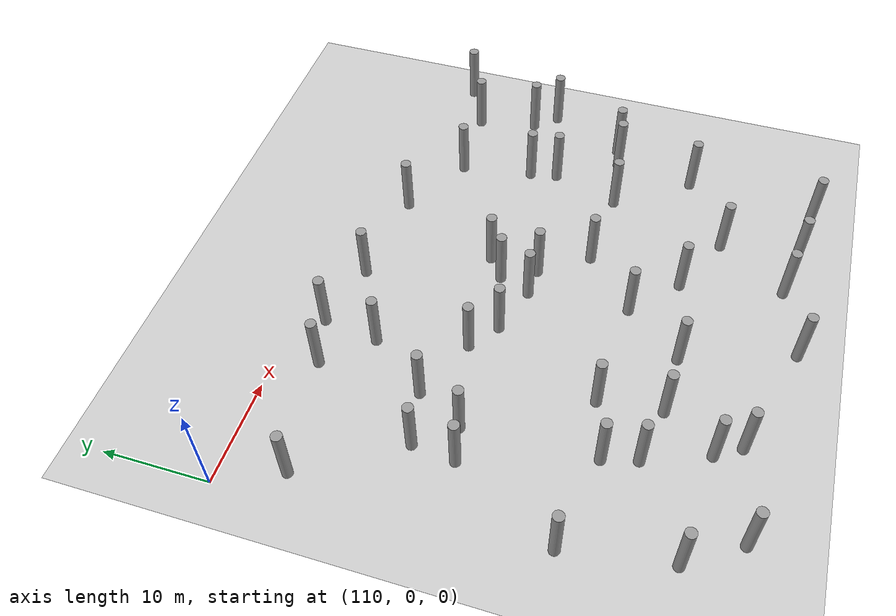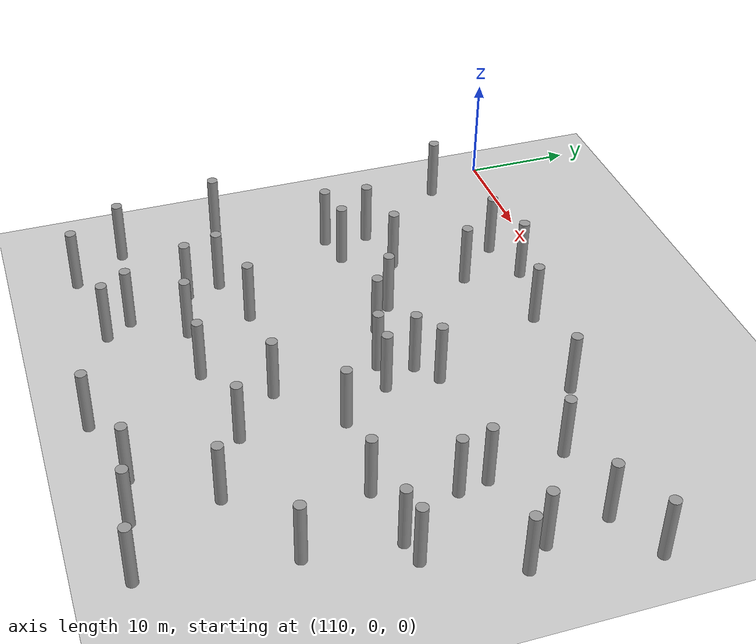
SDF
<sdf version="1.5">
 <world name="circle">
  <model name="ground">
   <static>1</static>
   <link name="link">
    <collision name="collision">
     <geometry><plane><normal>0 0 1</normal><size>100 100</size></plane></geometry>
     <surface><friction><ode><mu>100</mu><mu2>50</mu2></ode></friction></surface>
    </collision>
    <visual name="visual">
     <cast_shadows>0</cast_shadows>
     <geometry><plane><normal>0 0 1</normal><size>100 100</size></plane></geometry>
     <material>
      <script><uri>file://media/materials/scripts/gazebo.material</uri><name>Gazebo/Grey</name></script>
     </material>
    </visual>
    <velocity_decay><linear>0</linear><angular>0</angular></velocity_decay>
   </link>
  </model>
  <model name="unit_cylinder_180">
   <pose>117.227349672 -43.1780767599 3 3e-06 4e-06 -0</pose>
   <static>1</static>
   <self_collide>1</self_collide>
   <link name="link">
    <inertial>
     <mass>1</mass>
     <inertia><ixx>0.145833</ixx><ixy>0</ixy><ixz>0</ixz><iyy>0.145833</iyy><iyz>0</iyz><izz>0.125</izz></inertia>
    </inertial>
    <collision name="collision">
     <geometry><cylinder><radius>0.5</radius><length>6</length></cylinder></geometry>
    </collision>
    <visual name="visual">
     <geometry><cylinder><radius>0.5</radius><length>6</length></cylinder></geometry>
     <material>
      <script><name>Gazebo/Grey</name><uri>file://media/materials/scripts/gazebo.material</uri></script>
     </material>
    </visual>
    <collision name="cyl_collision">
     <geometry><cylinder><radius>0.5</radius><length>6</length></cylinder></geometry>
    </collision>
    <sensor name="my_contact" type="contact">
     <contact><collision>cyl_collision</collision></contact>
     <update_rate>5</update_rate>
    </sensor>
   </link>
  </model>
  <model name="unit_cylinder_181">
   <pose>114.049163277 -38.3303266834 3 3e-06 4e-06 -0</pose>
   <static>1</static>
   <self_collide>1</self_collide>
   <link name="link">
    <inertial>
     <mass>1</mass>
     <inertia><ixx>0.145833</ixx><ixy>0</ixy><ixz>0</ixz><iyy>0.145833</iyy><iyz>0</iyz><izz>0.125</izz></inertia>
    </inertial>
    <collision name="collision">
     <geometry><cylinder><radius>0.5</radius><length>6</length></cylinder></geometry>
    </collision>
    <visual name="visual">
     <geometry><cylinder><radius>0.5</radius><length>6</length></cylinder></geometry>
     <material>
      <script><name>Gazebo/Grey</name><uri>file://media/materials/scripts/gazebo.material</uri></script>
     </material>
    </visual>
    <collision name="cyl_collision">
     <geometry><cylinder><radius>0.5</radius><length>6</length></cylinder></geometry>
    </collision>
    <sensor name="my_contact" type="contact">
     <contact><collision>cyl_collision</collision></contact>
     <update_rate>5</update_rate>
    </sensor>
   </link>
  </model>
  <model name="unit_cylinder_182">
   <pose>112.530425432 -28.7020514311 3 3e-06 4e-06 -0</pose>
   <static>1</static>
   <self_collide>1</self_collide>
   <link name="link">
    <inertial>
     <mass>1</mass>
     <inertia><ixx>0.145833</ixx><ixy>0</ixy><ixz>0</ixz><iyy>0.145833</iyy><iyz>0</iyz><izz>0.125</izz></inertia>
    </inertial>
    <collision name="collision">
     <geometry><cylinder><radius>0.5</radius><length>6</length></cylinder></geometry>
    </collision>
    <visual name="visual">
     <geometry><cylinder><radius>0.5</radius><length>6</length></cylinder></geometry>
     <material>
      <script><name>Gazebo/Grey</name><uri>file://media/materials/scripts/gazebo.material</uri></script>
     </material>
    </visual>
    <collision name="cyl_collision">
     <geometry><cylinder><radius>0.5</radius><length>6</length></cylinder></geometry>
    </collision>
    <sensor name="my_contact" type="contact">
     <contact><collision>cyl_collision</collision></contact>
     <update_rate>5</update_rate>
    </sensor>
   </link>
  </model>
  <model name="unit_cylinder_183">
   <pose>117.67870654 -18.8550168475 3 3e-06 4e-06 -0</pose>
   <static>1</static>
   <self_collide>1</self_collide>
   <link name="link">
    <inertial>
     <mass>1</mass>
     <inertia><ixx>0.145833</ixx><ixy>0</ixy><ixz>0</ixz><iyy>0.145833</iyy><iyz>0</iyz><izz>0.125</izz></inertia>
    </inertial>
    <collision name="collision">
     <geometry><cylinder><radius>0.5</radius><length>6</length></cylinder></geometry>
    </collision>
    <visual name="visual">
     <geometry><cylinder><radius>0.5</radius><length>6</length></cylinder></geometry>
     <material>
      <script><name>Gazebo/Grey</name><uri>file://media/materials/scripts/gazebo.material</uri></script>
     </material>
    </visual>
    <collision name="cyl_collision">
     <geometry><cylinder><radius>0.5</radius><length>6</length></cylinder></geometry>
    </collision>
    <sensor name="my_contact" type="contact">
     <contact><collision>cyl_collision</collision></contact>
     <update_rate>5</update_rate>
    </sensor>
   </link>
  </model>
  <model name="unit_cylinder_184">
   <pose>118.140225729 -14.8021206017 3 3e-06 4e-06 -0</pose>
   <static>1</static>
   <self_collide>1</self_collide>
   <link name="link">
    <inertial>
     <mass>1</mass>
     <inertia><ixx>0.145833</ixx><ixy>0</ixy><ixz>0</ixz><iyy>0.145833</iyy><iyz>0</iyz><izz>0.125</izz></inertia>
    </inertial>
    <collision name="collision">
     <geometry><cylinder><radius>0.5</radius><length>6</length></cylinder></geometry>
    </collision>
    <visual name="visual">
     <geometry><cylinder><radius>0.5</radius><length>6</length></cylinder></geometry>
     <material>
      <script><name>Gazebo/Grey</name><uri>file://media/materials/scripts/gazebo.material</uri></script>
     </material>
    </visual>
    <collision name="cyl_collision">
     <geometry><cylinder><radius>0.5</radius><length>6</length></cylinder></geometry>
    </collision>
    <sensor name="my_contact" type="contact">
     <contact><collision>cyl_collision</collision></contact>
     <update_rate>5</update_rate>
    </sensor>
   </link>
  </model>
  <model name="unit_cylinder_185">
   <pose>112.664201997 -5.79426701286 3 3e-06 4e-06 -0</pose>
   <static>1</static>
   <self_collide>1</self_collide>
   <link name="link">
    <inertial>
     <mass>1</mass>
     <inertia><ixx>0.145833</ixx><ixy>0</ixy><ixz>0</ixz><iyy>0.145833</iyy><iyz>0</iyz><izz>0.125</izz></inertia>
    </inertial>
    <collision name="collision">
     <geometry><cylinder><radius>0.5</radius><length>6</length></cylinder></geometry>
    </collision>
    <visual name="visual">
     <geometry><cylinder><radius>0.5</radius><length>6</length></cylinder></geometry>
     <material>
      <script><name>Gazebo/Grey</name><uri>file://media/materials/scripts/gazebo.material</uri></script>
     </material>
    </visual>
    <collision name="cyl_collision">
     <geometry><cylinder><radius>0.5</radius><length>6</length></cylinder></geometry>
    </collision>
    <sensor name="my_contact" type="contact">
     <contact><collision>cyl_collision</collision></contact>
     <update_rate>5</update_rate>
    </sensor>
   </link>
  </model>
  <model name="unit_cylinder_192">
   <pose>124.418113143 -39.4766305464 3 3e-06 4e-06 -0</pose>
   <static>1</static>
   <self_collide>1</self_collide>
   <link name="link">
    <inertial>
     <mass>1</mass>
     <inertia><ixx>0.145833</ixx><ixy>0</ixy><ixz>0</ixz><iyy>0.145833</iyy><iyz>0</iyz><izz>0.125</izz></inertia>
    </inertial>
    <collision name="collision">
     <geometry><cylinder><radius>0.5</radius><length>6</length></cylinder></geometry>
    </collision>
    <visual name="visual">
     <geometry><cylinder><radius>0.5</radius><length>6</length></cylinder></geometry>
     <material>
      <script><name>Gazebo/Grey</name><uri>file://media/materials/scripts/gazebo.material</uri></script>
     </material>
    </visual>
    <collision name="cyl_collision">
     <geometry><cylinder><radius>0.5</radius><length>6</length></cylinder></geometry>
    </collision>
    <sensor name="my_contact" type="contact">
     <contact><collision>cyl_collision</collision></contact>
     <update_rate>5</update_rate>
    </sensor>
   </link>
  </model>
  <model name="unit_cylinder_193">
   <pose>122.183097567 -33.6209248486 3 3e-06 4e-06 -0</pose>
   <static>1</static>
   <self_collide>1</self_collide>
   <link name="link">
    <inertial>
     <mass>1</mass>
     <inertia><ixx>0.145833</ixx><ixy>0</ixy><ixz>0</ixz><iyy>0.145833</iyy><iyz>0</iyz><izz>0.125</izz></inertia>
    </inertial>
    <collision name="collision">
     <geometry><cylinder><radius>0.5</radius><length>6</length></cylinder></geometry>
    </collision>
    <visual name="visual">
     <geometry><cylinder><radius>0.5</radius><length>6</length></cylinder></geometry>
     <material>
      <script><name>Gazebo/Grey</name><uri>file://media/materials/scripts/gazebo.material</uri></script>
     </material>
    </visual>
    <collision name="cyl_collision">
     <geometry><cylinder><radius>0.5</radius><length>6</length></cylinder></geometry>
    </collision>
    <sensor name="my_contact" type="contact">
     <contact><collision>cyl_collision</collision></contact>
     <update_rate>5</update_rate>
    </sensor>
   </link>
  </model>
  <model name="unit_cylinder_194">
   <pose>121.361148416 -30.4548703678 3 3e-06 4e-06 -0</pose>
   <static>1</static>
   <self_collide>1</self_collide>
   <link name="link">
    <inertial>
     <mass>1</mass>
     <inertia><ixx>0.145833</ixx><ixy>0</ixy><ixz>0</ixz><iyy>0.145833</iyy><iyz>0</iyz><izz>0.125</izz></inertia>
    </inertial>
    <collision name="collision">
     <geometry><cylinder><radius>0.5</radius><length>6</length></cylinder></geometry>
    </collision>
    <visual name="visual">
     <geometry><cylinder><radius>0.5</radius><length>6</length></cylinder></geometry>
     <material>
      <script><name>Gazebo/Grey</name><uri>file://media/materials/scripts/gazebo.material</uri></script>
     </material>
    </visual>
    <collision name="cyl_collision">
     <geometry><cylinder><radius>0.5</radius><length>6</length></cylinder></geometry>
    </collision>
    <sensor name="my_contact" type="contact">
     <contact><collision>cyl_collision</collision></contact>
     <update_rate>5</update_rate>
    </sensor>
   </link>
  </model>
  <model name="unit_cylinder_195">
   <pose>120.883897498 -18.1847972878 3 3e-06 4e-06 -0</pose>
   <static>1</static>
   <self_collide>1</self_collide>
   <link name="link">
    <inertial>
     <mass>1</mass>
     <inertia><ixx>0.145833</ixx><ixy>0</ixy><ixz>0</ixz><iyy>0.145833</iyy><iyz>0</iyz><izz>0.125</izz></inertia>
    </inertial>
    <collision name="collision">
     <geometry><cylinder><radius>0.5</radius><length>6</length></cylinder></geometry>
    </collision>
    <visual name="visual">
     <geometry><cylinder><radius>0.5</radius><length>6</length></cylinder></geometry>
     <material>
      <script><name>Gazebo/Grey</name><uri>file://media/materials/scripts/gazebo.material</uri></script>
     </material>
    </visual>
    <collision name="cyl_collision">
     <geometry><cylinder><radius>0.5</radius><length>6</length></cylinder></geometry>
    </collision>
    <sensor name="my_contact" type="contact">
     <contact><collision>cyl_collision</collision></contact>
     <update_rate>5</update_rate>
    </sensor>
   </link>
  </model>
  <model name="unit_cylinder_196">
   <pose>123.217998125 -13.7854951915 3 3e-06 4e-06 -0</pose>
   <static>1</static>
   <self_collide>1</self_collide>
   <link name="link">
    <inertial>
     <mass>1</mass>
     <inertia><ixx>0.145833</ixx><ixy>0</ixy><ixz>0</ixz><iyy>0.145833</iyy><iyz>0</iyz><izz>0.125</izz></inertia>
    </inertial>
    <collision name="collision">
     <geometry><cylinder><radius>0.5</radius><length>6</length></cylinder></geometry>
    </collision>
    <visual name="visual">
     <geometry><cylinder><radius>0.5</radius><length>6</length></cylinder></geometry>
     <material>
      <script><name>Gazebo/Grey</name><uri>file://media/materials/scripts/gazebo.material</uri></script>
     </material>
    </visual>
    <collision name="cyl_collision">
     <geometry><cylinder><radius>0.5</radius><length>6</length></cylinder></geometry>
    </collision>
    <sensor name="my_contact" type="contact">
     <contact><collision>cyl_collision</collision></contact>
     <update_rate>5</update_rate>
    </sensor>
   </link>
  </model>
  <model name="unit_cylinder_197">
   <pose>123.663674029 -3.95529049452 3 3e-06 4e-06 -0</pose>
   <static>1</static>
   <self_collide>1</self_collide>
   <link name="link">
    <inertial>
     <mass>1</mass>
     <inertia><ixx>0.145833</ixx><ixy>0</ixy><ixz>0</ixz><iyy>0.145833</iyy><iyz>0</iyz><izz>0.125</izz></inertia>
    </inertial>
    <collision name="collision">
     <geometry><cylinder><radius>0.5</radius><length>6</length></cylinder></geometry>
    </collision>
    <visual name="visual">
     <geometry><cylinder><radius>0.5</radius><length>6</length></cylinder></geometry>
     <material>
      <script><name>Gazebo/Grey</name><uri>file://media/materials/scripts/gazebo.material</uri></script>
     </material>
    </visual>
    <collision name="cyl_collision">
     <geometry><cylinder><radius>0.5</radius><length>6</length></cylinder></geometry>
    </collision>
    <sensor name="my_contact" type="contact">
     <contact><collision>cyl_collision</collision></contact>
     <update_rate>5</update_rate>
    </sensor>
   </link>
  </model>
  <model name="unit_cylinder_204">
   <pose>125.865000542 -41.8383521421 3 3e-06 4e-06 -0</pose>
   <static>1</static>
   <self_collide>1</self_collide>
   <link name="link">
    <inertial>
     <mass>1</mass>
     <inertia><ixx>0.145833</ixx><ixy>0</ixy><ixz>0</ixz><iyy>0.145833</iyy><iyz>0</iyz><izz>0.125</izz></inertia>
    </inertial>
    <collision name="collision">
     <geometry><cylinder><radius>0.5</radius><length>6</length></cylinder></geometry>
    </collision>
    <visual name="visual">
     <geometry><cylinder><radius>0.5</radius><length>6</length></cylinder></geometry>
     <material>
      <script><name>Gazebo/Grey</name><uri>file://media/materials/scripts/gazebo.material</uri></script>
     </material>
    </visual>
    <collision name="cyl_collision">
     <geometry><cylinder><radius>0.5</radius><length>6</length></cylinder></geometry>
    </collision>
    <sensor name="my_contact" type="contact">
     <contact><collision>cyl_collision</collision></contact>
     <update_rate>5</update_rate>
    </sensor>
   </link>
  </model>
  <model name="unit_cylinder_205">
   <pose>127.493491685 -34.7688129786 3 3e-06 4e-06 -0</pose>
   <static>1</static>
   <self_collide>1</self_collide>
   <link name="link">
    <inertial>
     <mass>1</mass>
     <inertia><ixx>0.145833</ixx><ixy>0</ixy><ixz>0</ixz><iyy>0.145833</iyy><iyz>0</iyz><izz>0.125</izz></inertia>
    </inertial>
    <collision name="collision">
     <geometry><cylinder><radius>0.5</radius><length>6</length></cylinder></geometry>
    </collision>
    <visual name="visual">
     <geometry><cylinder><radius>0.5</radius><length>6</length></cylinder></geometry>
     <material>
      <script><name>Gazebo/Grey</name><uri>file://media/materials/scripts/gazebo.material</uri></script>
     </material>
    </visual>
    <collision name="cyl_collision">
     <geometry><cylinder><radius>0.5</radius><length>6</length></cylinder></geometry>
    </collision>
    <sensor name="my_contact" type="contact">
     <contact><collision>cyl_collision</collision></contact>
     <update_rate>5</update_rate>
    </sensor>
   </link>
  </model>
  <model name="unit_cylinder_206">
   <pose>126.850417998 -28.8914959607 3 3e-06 4e-06 -0</pose>
   <static>1</static>
   <self_collide>1</self_collide>
   <link name="link">
    <inertial>
     <mass>1</mass>
     <inertia><ixx>0.145833</ixx><ixy>0</ixy><ixz>0</ixz><iyy>0.145833</iyy><iyz>0</iyz><izz>0.125</izz></inertia>
    </inertial>
    <collision name="collision">
     <geometry><cylinder><radius>0.5</radius><length>6</length></cylinder></geometry>
    </collision>
    <visual name="visual">
     <geometry><cylinder><radius>0.5</radius><length>6</length></cylinder></geometry>
     <material>
      <script><name>Gazebo/Grey</name><uri>file://media/materials/scripts/gazebo.material</uri></script>
     </material>
    </visual>
    <collision name="cyl_collision">
     <geometry><cylinder><radius>0.5</radius><length>6</length></cylinder></geometry>
    </collision>
    <sensor name="my_contact" type="contact">
     <contact><collision>cyl_collision</collision></contact>
     <update_rate>5</update_rate>
    </sensor>
   </link>
  </model>
  <model name="unit_cylinder_207">
   <pose>132.1364359 -18.4591327651 3 3e-06 4e-06 -0</pose>
   <static>1</static>
   <self_collide>1</self_collide>
   <link name="link">
    <inertial>
     <mass>1</mass>
     <inertia><ixx>0.145833</ixx><ixy>0</ixy><ixz>0</ixz><iyy>0.145833</iyy><iyz>0</iyz><izz>0.125</izz></inertia>
    </inertial>
    <collision name="collision">
     <geometry><cylinder><radius>0.5</radius><length>6</length></cylinder></geometry>
    </collision>
    <visual name="visual">
     <geometry><cylinder><radius>0.5</radius><length>6</length></cylinder></geometry>
     <material>
      <script><name>Gazebo/Grey</name><uri>file://media/materials/scripts/gazebo.material</uri></script>
     </material>
    </visual>
    <collision name="cyl_collision">
     <geometry><cylinder><radius>0.5</radius><length>6</length></cylinder></geometry>
    </collision>
    <sensor name="my_contact" type="contact">
     <contact><collision>cyl_collision</collision></contact>
     <update_rate>5</update_rate>
    </sensor>
   </link>
  </model>
  <model name="unit_cylinder_208">
   <pose>129.337318922 -16.4013337597 3 3e-06 4e-06 -0</pose>
   <static>1</static>
   <self_collide>1</self_collide>
   <link name="link">
    <inertial>
     <mass>1</mass>
     <inertia><ixx>0.145833</ixx><ixy>0</ixy><ixz>0</ixz><iyy>0.145833</iyy><iyz>0</iyz><izz>0.125</izz></inertia>
    </inertial>
    <collision name="collision">
     <geometry><cylinder><radius>0.5</radius><length>6</length></cylinder></geometry>
    </collision>
    <visual name="visual">
     <geometry><cylinder><radius>0.5</radius><length>6</length></cylinder></geometry>
     <material>
      <script><name>Gazebo/Grey</name><uri>file://media/materials/scripts/gazebo.material</uri></script>
     </material>
    </visual>
    <collision name="cyl_collision">
     <geometry><cylinder><radius>0.5</radius><length>6</length></cylinder></geometry>
    </collision>
    <sensor name="my_contact" type="contact">
     <contact><collision>cyl_collision</collision></contact>
     <update_rate>5</update_rate>
    </sensor>
   </link>
  </model>
  <model name="unit_cylinder_209">
   <pose>127.486648958 -8.07583441381 3 3e-06 4e-06 -0</pose>
   <static>1</static>
   <self_collide>1</self_collide>
   <link name="link">
    <inertial>
     <mass>1</mass>
     <inertia><ixx>0.145833</ixx><ixy>0</ixy><ixz>0</ixz><iyy>0.145833</iyy><iyz>0</iyz><izz>0.125</izz></inertia>
    </inertial>
    <collision name="collision">
     <geometry><cylinder><radius>0.5</radius><length>6</length></cylinder></geometry>
    </collision>
    <visual name="visual">
     <geometry><cylinder><radius>0.5</radius><length>6</length></cylinder></geometry>
     <material>
      <script><name>Gazebo/Grey</name><uri>file://media/materials/scripts/gazebo.material</uri></script>
     </material>
    </visual>
    <collision name="cyl_collision">
     <geometry><cylinder><radius>0.5</radius><length>6</length></cylinder></geometry>
    </collision>
    <sensor name="my_contact" type="contact">
     <contact><collision>cyl_collision</collision></contact>
     <update_rate>5</update_rate>
    </sensor>
   </link>
  </model>
  <model name="unit_cylinder_210">
   <pose>128.273730975 -2.70548357419 3 3e-06 4e-06 -0</pose>
   <static>1</static>
   <self_collide>1</self_collide>
   <link name="link">
    <inertial>
     <mass>1</mass>
     <inertia><ixx>0.145833</ixx><ixy>0</ixy><ixz>0</ixz><iyy>0.145833</iyy><iyz>0</iyz><izz>0.125</izz></inertia>
    </inertial>
    <collision name="collision">
     <geometry><cylinder><radius>0.5</radius><length>6</length></cylinder></geometry>
    </collision>
    <visual name="visual">
     <geometry><cylinder><radius>0.5</radius><length>6</length></cylinder></geometry>
     <material>
      <script><name>Gazebo/Grey</name><uri>file://media/materials/scripts/gazebo.material</uri></script>
     </material>
    </visual>
    <collision name="cyl_collision">
     <geometry><cylinder><radius>0.5</radius><length>6</length></cylinder></geometry>
    </collision>
    <sensor name="my_contact" type="contact">
     <contact><collision>cyl_collision</collision></contact>
     <update_rate>5</update_rate>
    </sensor>
   </link>
  </model>
  <model name="unit_cylinder_216">
   <pose>136.867746934 -45.3376663842 3 3e-06 4e-06 -0</pose>
   <static>1</static>
   <self_collide>1</self_collide>
   <link name="link">
    <inertial>
     <mass>1</mass>
     <inertia><ixx>0.145833</ixx><ixy>0</ixy><ixz>0</ixz><iyy>0.145833</iyy><iyz>0</iyz><izz>0.125</izz></inertia>
    </inertial>
    <collision name="collision">
     <geometry><cylinder><radius>0.5</radius><length>6</length></cylinder></geometry>
    </collision>
    <visual name="visual">
     <geometry><cylinder><radius>0.5</radius><length>6</length></cylinder></geometry>
     <material>
      <script><name>Gazebo/Grey</name><uri>file://media/materials/scripts/gazebo.material</uri></script>
     </material>
    </visual>
    <collision name="cyl_collision">
     <geometry><cylinder><radius>0.5</radius><length>6</length></cylinder></geometry>
    </collision>
    <sensor name="my_contact" type="contact">
     <contact><collision>cyl_collision</collision></contact>
     <update_rate>5</update_rate>
    </sensor>
   </link>
  </model>
  <model name="unit_cylinder_217">
   <pose>133.355371106 -34.9744945491 3 3e-06 4e-06 -0</pose>
   <static>1</static>
   <self_collide>1</self_collide>
   <link name="link">
    <inertial>
     <mass>1</mass>
     <inertia><ixx>0.145833</ixx><ixy>0</ixy><ixz>0</ixz><iyy>0.145833</iyy><iyz>0</iyz><izz>0.125</izz></inertia>
    </inertial>
    <collision name="collision">
     <geometry><cylinder><radius>0.5</radius><length>6</length></cylinder></geometry>
    </collision>
    <visual name="visual">
     <geometry><cylinder><radius>0.5</radius><length>6</length></cylinder></geometry>
     <material>
      <script><name>Gazebo/Grey</name><uri>file://media/materials/scripts/gazebo.material</uri></script>
     </material>
    </visual>
    <collision name="cyl_collision">
     <geometry><cylinder><radius>0.5</radius><length>6</length></cylinder></geometry>
    </collision>
    <sensor name="my_contact" type="contact">
     <contact><collision>cyl_collision</collision></contact>
     <update_rate>5</update_rate>
    </sensor>
   </link>
  </model>
  <model name="unit_cylinder_218">
   <pose>137.625552229 -29.6007255712 3 3e-06 4e-06 -0</pose>
   <static>1</static>
   <self_collide>1</self_collide>
   <link name="link">
    <inertial>
     <mass>1</mass>
     <inertia><ixx>0.145833</ixx><ixy>0</ixy><ixz>0</ixz><iyy>0.145833</iyy><iyz>0</iyz><izz>0.125</izz></inertia>
    </inertial>
    <collision name="collision">
     <geometry><cylinder><radius>0.5</radius><length>6</length></cylinder></geometry>
    </collision>
    <visual name="visual">
     <geometry><cylinder><radius>0.5</radius><length>6</length></cylinder></geometry>
     <material>
      <script><name>Gazebo/Grey</name><uri>file://media/materials/scripts/gazebo.material</uri></script>
     </material>
    </visual>
    <collision name="cyl_collision">
     <geometry><cylinder><radius>0.5</radius><length>6</length></cylinder></geometry>
    </collision>
    <sensor name="my_contact" type="contact">
     <contact><collision>cyl_collision</collision></contact>
     <update_rate>5</update_rate>
    </sensor>
   </link>
  </model>
  <model name="unit_cylinder_219">
   <pose>136.878477625 -19.9841074072 3 3e-06 4e-06 -0</pose>
   <static>1</static>
   <self_collide>1</self_collide>
   <link name="link">
    <inertial>
     <mass>1</mass>
     <inertia><ixx>0.145833</ixx><ixy>0</ixy><ixz>0</ixz><iyy>0.145833</iyy><iyz>0</iyz><izz>0.125</izz></inertia>
    </inertial>
    <collision name="collision">
     <geometry><cylinder><radius>0.5</radius><length>6</length></cylinder></geometry>
    </collision>
    <visual name="visual">
     <geometry><cylinder><radius>0.5</radius><length>6</length></cylinder></geometry>
     <material>
      <script><name>Gazebo/Grey</name><uri>file://media/materials/scripts/gazebo.material</uri></script>
     </material>
    </visual>
    <collision name="cyl_collision">
     <geometry><cylinder><radius>0.5</radius><length>6</length></cylinder></geometry>
    </collision>
    <sensor name="my_contact" type="contact">
     <contact><collision>cyl_collision</collision></contact>
     <update_rate>5</update_rate>
    </sensor>
   </link>
  </model>
  <model name="unit_cylinder_220">
   <pose>137.985148418 -16.9545515312 3 3e-06 4e-06 -0</pose>
   <static>1</static>
   <self_collide>1</self_collide>
   <link name="link">
    <inertial>
     <mass>1</mass>
     <inertia><ixx>0.145833</ixx><ixy>0</ixy><ixz>0</ixz><iyy>0.145833</iyy><iyz>0</iyz><izz>0.125</izz></inertia>
    </inertial>
    <collision name="collision">
     <geometry><cylinder><radius>0.5</radius><length>6</length></cylinder></geometry>
    </collision>
    <visual name="visual">
     <geometry><cylinder><radius>0.5</radius><length>6</length></cylinder></geometry>
     <material>
      <script><name>Gazebo/Grey</name><uri>file://media/materials/scripts/gazebo.material</uri></script>
     </material>
    </visual>
    <collision name="cyl_collision">
     <geometry><cylinder><radius>0.5</radius><length>6</length></cylinder></geometry>
    </collision>
    <sensor name="my_contact" type="contact">
     <contact><collision>cyl_collision</collision></contact>
     <update_rate>5</update_rate>
    </sensor>
   </link>
  </model>
  <model name="unit_cylinder_221">
   <pose>134.895268519 -4.19392041962 3 3e-06 4e-06 -0</pose>
   <static>1</static>
   <self_collide>1</self_collide>
   <link name="link">
    <inertial>
     <mass>1</mass>
     <inertia><ixx>0.145833</ixx><ixy>0</ixy><ixz>0</ixz><iyy>0.145833</iyy><iyz>0</iyz><izz>0.125</izz></inertia>
    </inertial>
    <collision name="collision">
     <geometry><cylinder><radius>0.5</radius><length>6</length></cylinder></geometry>
    </collision>
    <visual name="visual">
     <geometry><cylinder><radius>0.5</radius><length>6</length></cylinder></geometry>
     <material>
      <script><name>Gazebo/Grey</name><uri>file://media/materials/scripts/gazebo.material</uri></script>
     </material>
    </visual>
    <collision name="cyl_collision">
     <geometry><cylinder><radius>0.5</radius><length>6</length></cylinder></geometry>
    </collision>
    <sensor name="my_contact" type="contact">
     <contact><collision>cyl_collision</collision></contact>
     <update_rate>5</update_rate>
    </sensor>
   </link>
  </model>
  <model name="unit_cylinder_228">
   <pose>143.907242474 -43.3625671628 3 3e-06 4e-06 -0</pose>
   <static>1</static>
   <self_collide>1</self_collide>
   <link name="link">
    <inertial>
     <mass>1</mass>
     <inertia><ixx>0.145833</ixx><ixy>0</ixy><ixz>0</ixz><iyy>0.145833</iyy><iyz>0</iyz><izz>0.125</izz></inertia>
    </inertial>
    <collision name="collision">
     <geometry><cylinder><radius>0.5</radius><length>6</length></cylinder></geometry>
    </collision>
    <visual name="visual">
     <geometry><cylinder><radius>0.5</radius><length>6</length></cylinder></geometry>
     <material>
      <script><name>Gazebo/Grey</name><uri>file://media/materials/scripts/gazebo.material</uri></script>
     </material>
    </visual>
    <collision name="cyl_collision">
     <geometry><cylinder><radius>0.5</radius><length>6</length></cylinder></geometry>
    </collision>
    <sensor name="my_contact" type="contact">
     <contact><collision>cyl_collision</collision></contact>
     <update_rate>5</update_rate>
    </sensor>
   </link>
  </model>
  <model name="unit_cylinder_229">
   <pose>142.020433223 -33.7151473519 3 3e-06 4e-06 -0</pose>
   <static>1</static>
   <self_collide>1</self_collide>
   <link name="link">
    <inertial>
     <mass>1</mass>
     <inertia><ixx>0.145833</ixx><ixy>0</ixy><ixz>0</ixz><iyy>0.145833</iyy><iyz>0</iyz><izz>0.125</izz></inertia>
    </inertial>
    <collision name="collision">
     <geometry><cylinder><radius>0.5</radius><length>6</length></cylinder></geometry>
    </collision>
    <visual name="visual">
     <geometry><cylinder><radius>0.5</radius><length>6</length></cylinder></geometry>
     <material>
      <script><name>Gazebo/Grey</name><uri>file://media/materials/scripts/gazebo.material</uri></script>
     </material>
    </visual>
    <collision name="cyl_collision">
     <geometry><cylinder><radius>0.5</radius><length>6</length></cylinder></geometry>
    </collision>
    <sensor name="my_contact" type="contact">
     <contact><collision>cyl_collision</collision></contact>
     <update_rate>5</update_rate>
    </sensor>
   </link>
  </model>
  <model name="unit_cylinder_230">
   <pose>142.918453462 -24.7576187698 3 3e-06 4e-06 -0</pose>
   <static>1</static>
   <self_collide>1</self_collide>
   <link name="link">
    <inertial>
     <mass>1</mass>
     <inertia><ixx>0.145833</ixx><ixy>0</ixy><ixz>0</ixz><iyy>0.145833</iyy><iyz>0</iyz><izz>0.125</izz></inertia>
    </inertial>
    <collision name="collision">
     <geometry><cylinder><radius>0.5</radius><length>6</length></cylinder></geometry>
    </collision>
    <visual name="visual">
     <geometry><cylinder><radius>0.5</radius><length>6</length></cylinder></geometry>
     <material>
      <script><name>Gazebo/Grey</name><uri>file://media/materials/scripts/gazebo.material</uri></script>
     </material>
    </visual>
    <collision name="cyl_collision">
     <geometry><cylinder><radius>0.5</radius><length>6</length></cylinder></geometry>
    </collision>
    <sensor name="my_contact" type="contact">
     <contact><collision>cyl_collision</collision></contact>
     <update_rate>5</update_rate>
    </sensor>
   </link>
  </model>
  <model name="unit_cylinder_231">
   <pose>139.750259443 -20.1743412686 3 3e-06 4e-06 -0</pose>
   <static>1</static>
   <self_collide>1</self_collide>
   <link name="link">
    <inertial>
     <mass>1</mass>
     <inertia><ixx>0.145833</ixx><ixy>0</ixy><ixz>0</ixz><iyy>0.145833</iyy><iyz>0</iyz><izz>0.125</izz></inertia>
    </inertial>
    <collision name="collision">
     <geometry><cylinder><radius>0.5</radius><length>6</length></cylinder></geometry>
    </collision>
    <visual name="visual">
     <geometry><cylinder><radius>0.5</radius><length>6</length></cylinder></geometry>
     <material>
      <script><name>Gazebo/Grey</name><uri>file://media/materials/scripts/gazebo.material</uri></script>
     </material>
    </visual>
    <collision name="cyl_collision">
     <geometry><cylinder><radius>0.5</radius><length>6</length></cylinder></geometry>
    </collision>
    <sensor name="my_contact" type="contact">
     <contact><collision>cyl_collision</collision></contact>
     <update_rate>5</update_rate>
    </sensor>
   </link>
  </model>
  <model name="unit_cylinder_232">
   <pose>140.106040344 -15.378014358 3 3e-06 4e-06 -0</pose>
   <static>1</static>
   <self_collide>1</self_collide>
   <link name="link">
    <inertial>
     <mass>1</mass>
     <inertia><ixx>0.145833</ixx><ixy>0</ixy><ixz>0</ixz><iyy>0.145833</iyy><iyz>0</iyz><izz>0.125</izz></inertia>
    </inertial>
    <collision name="collision">
     <geometry><cylinder><radius>0.5</radius><length>6</length></cylinder></geometry>
    </collision>
    <visual name="visual">
     <geometry><cylinder><radius>0.5</radius><length>6</length></cylinder></geometry>
     <material>
      <script><name>Gazebo/Grey</name><uri>file://media/materials/scripts/gazebo.material</uri></script>
     </material>
    </visual>
    <collision name="cyl_collision">
     <geometry><cylinder><radius>0.5</radius><length>6</length></cylinder></geometry>
    </collision>
    <sensor name="my_contact" type="contact">
     <contact><collision>cyl_collision</collision></contact>
     <update_rate>5</update_rate>
    </sensor>
   </link>
  </model>
  <model name="unit_cylinder_233">
   <pose>144.684955685 -5.12922024506 3 3e-06 4e-06 -0</pose>
   <static>1</static>
   <self_collide>1</self_collide>
   <link name="link">
    <inertial>
     <mass>1</mass>
     <inertia><ixx>0.145833</ixx><ixy>0</ixy><ixz>0</ixz><iyy>0.145833</iyy><iyz>0</iyz><izz>0.125</izz></inertia>
    </inertial>
    <collision name="collision">
     <geometry><cylinder><radius>0.5</radius><length>6</length></cylinder></geometry>
    </collision>
    <visual name="visual">
     <geometry><cylinder><radius>0.5</radius><length>6</length></cylinder></geometry>
     <material>
      <script><name>Gazebo/Grey</name><uri>file://media/materials/scripts/gazebo.material</uri></script>
     </material>
    </visual>
    <collision name="cyl_collision">
     <geometry><cylinder><radius>0.5</radius><length>6</length></cylinder></geometry>
    </collision>
    <sensor name="my_contact" type="contact">
     <contact><collision>cyl_collision</collision></contact>
     <update_rate>5</update_rate>
    </sensor>
   </link>
  </model>
  <model name="unit_cylinder_240">
   <pose>148.480906354 -44.1203875566 3 3e-06 4e-06 -0</pose>
   <static>1</static>
   <self_collide>1</self_collide>
   <link name="link">
    <inertial>
     <mass>1</mass>
     <inertia><ixx>0.145833</ixx><ixy>0</ixy><ixz>0</ixz><iyy>0.145833</iyy><iyz>0</iyz><izz>0.125</izz></inertia>
    </inertial>
    <collision name="collision">
     <geometry><cylinder><radius>0.5</radius><length>6</length></cylinder></geometry>
    </collision>
    <visual name="visual">
     <geometry><cylinder><radius>0.5</radius><length>6</length></cylinder></geometry>
     <material>
      <script><name>Gazebo/Grey</name><uri>file://media/materials/scripts/gazebo.material</uri></script>
     </material>
    </visual>
    <collision name="cyl_collision">
     <geometry><cylinder><radius>0.5</radius><length>6</length></cylinder></geometry>
    </collision>
    <sensor name="my_contact" type="contact">
     <contact><collision>cyl_collision</collision></contact>
     <update_rate>5</update_rate>
    </sensor>
   </link>
  </model>
  <model name="unit_cylinder_241">
   <pose>148.211759877 -36.7739402909 3 3e-06 4e-06 -0</pose>
   <static>1</static>
   <self_collide>1</self_collide>
   <link name="link">
    <inertial>
     <mass>1</mass>
     <inertia><ixx>0.145833</ixx><ixy>0</ixy><ixz>0</ixz><iyy>0.145833</iyy><iyz>0</iyz><izz>0.125</izz></inertia>
    </inertial>
    <collision name="collision">
     <geometry><cylinder><radius>0.5</radius><length>6</length></cylinder></geometry>
    </collision>
    <visual name="visual">
     <geometry><cylinder><radius>0.5</radius><length>6</length></cylinder></geometry>
     <material>
      <script><name>Gazebo/Grey</name><uri>file://media/materials/scripts/gazebo.material</uri></script>
     </material>
    </visual>
    <collision name="cyl_collision">
     <geometry><cylinder><radius>0.5</radius><length>6</length></cylinder></geometry>
    </collision>
    <sensor name="my_contact" type="contact">
     <contact><collision>cyl_collision</collision></contact>
     <update_rate>5</update_rate>
    </sensor>
   </link>
  </model>
  <model name="unit_cylinder_242">
   <pose>151.045808284 -25.3589966118 3 3e-06 4e-06 -0</pose>
   <static>1</static>
   <self_collide>1</self_collide>
   <link name="link">
    <inertial>
     <mass>1</mass>
     <inertia><ixx>0.145833</ixx><ixy>0</ixy><ixz>0</ixz><iyy>0.145833</iyy><iyz>0</iyz><izz>0.125</izz></inertia>
    </inertial>
    <collision name="collision">
     <geometry><cylinder><radius>0.5</radius><length>6</length></cylinder></geometry>
    </collision>
    <visual name="visual">
     <geometry><cylinder><radius>0.5</radius><length>6</length></cylinder></geometry>
     <material>
      <script><name>Gazebo/Grey</name><uri>file://media/materials/scripts/gazebo.material</uri></script>
     </material>
    </visual>
    <collision name="cyl_collision">
     <geometry><cylinder><radius>0.5</radius><length>6</length></cylinder></geometry>
    </collision>
    <sensor name="my_contact" type="contact">
     <contact><collision>cyl_collision</collision></contact>
     <update_rate>5</update_rate>
    </sensor>
   </link>
  </model>
  <model name="unit_cylinder_243">
   <pose>153.137900481 -18.7430648332 3 3e-06 4e-06 -0</pose>
   <static>1</static>
   <self_collide>1</self_collide>
   <link name="link">
    <inertial>
     <mass>1</mass>
     <inertia><ixx>0.145833</ixx><ixy>0</ixy><ixz>0</ixz><iyy>0.145833</iyy><iyz>0</iyz><izz>0.125</izz></inertia>
    </inertial>
    <collision name="collision">
     <geometry><cylinder><radius>0.5</radius><length>6</length></cylinder></geometry>
    </collision>
    <visual name="visual">
     <geometry><cylinder><radius>0.5</radius><length>6</length></cylinder></geometry>
     <material>
      <script><name>Gazebo/Grey</name><uri>file://media/materials/scripts/gazebo.material</uri></script>
     </material>
    </visual>
    <collision name="cyl_collision">
     <geometry><cylinder><radius>0.5</radius><length>6</length></cylinder></geometry>
    </collision>
    <sensor name="my_contact" type="contact">
     <contact><collision>cyl_collision</collision></contact>
     <update_rate>5</update_rate>
    </sensor>
   </link>
  </model>
  <model name="unit_cylinder_244">
   <pose>152.653085524 -16.0440010505 3 3e-06 4e-06 -0</pose>
   <static>1</static>
   <self_collide>1</self_collide>
   <link name="link">
    <inertial>
     <mass>1</mass>
     <inertia><ixx>0.145833</ixx><ixy>0</ixy><ixz>0</ixz><iyy>0.145833</iyy><iyz>0</iyz><izz>0.125</izz></inertia>
    </inertial>
    <collision name="collision">
     <geometry><cylinder><radius>0.5</radius><length>6</length></cylinder></geometry>
    </collision>
    <visual name="visual">
     <geometry><cylinder><radius>0.5</radius><length>6</length></cylinder></geometry>
     <material>
      <script><name>Gazebo/Grey</name><uri>file://media/materials/scripts/gazebo.material</uri></script>
     </material>
    </visual>
    <collision name="cyl_collision">
     <geometry><cylinder><radius>0.5</radius><length>6</length></cylinder></geometry>
    </collision>
    <sensor name="my_contact" type="contact">
     <contact><collision>cyl_collision</collision></contact>
     <update_rate>5</update_rate>
    </sensor>
   </link>
  </model>
  <model name="unit_cylinder_245">
   <pose>151.573424509 -8.95616199376 3 3e-06 4e-06 -0</pose>
   <static>1</static>
   <self_collide>1</self_collide>
   <link name="link">
    <inertial>
     <mass>1</mass>
     <inertia><ixx>0.145833</ixx><ixy>0</ixy><ixz>0</ixz><iyy>0.145833</iyy><iyz>0</iyz><izz>0.125</izz></inertia>
    </inertial>
    <collision name="collision">
     <geometry><cylinder><radius>0.5</radius><length>6</length></cylinder></geometry>
    </collision>
    <visual name="visual">
     <geometry><cylinder><radius>0.5</radius><length>6</length></cylinder></geometry>
     <material>
      <script><name>Gazebo/Grey</name><uri>file://media/materials/scripts/gazebo.material</uri></script>
     </material>
    </visual>
    <collision name="cyl_collision">
     <geometry><cylinder><radius>0.5</radius><length>6</length></cylinder></geometry>
    </collision>
    <sensor name="my_contact" type="contact">
     <contact><collision>cyl_collision</collision></contact>
     <update_rate>5</update_rate>
    </sensor>
   </link>
  </model>
  <model name="unit_cylinder_252">
   <pose>154.260252311 -44.9817439785 3 3e-06 4e-06 -0</pose>
   <static>1</static>
   <self_collide>1</self_collide>
   <link name="link">
    <inertial>
     <mass>1</mass>
     <inertia><ixx>0.145833</ixx><ixy>0</ixy><ixz>0</ixz><iyy>0.145833</iyy><iyz>0</iyz><izz>0.125</izz></inertia>
    </inertial>
    <collision name="collision">
     <geometry><cylinder><radius>0.5</radius><length>6</length></cylinder></geometry>
    </collision>
    <visual name="visual">
     <geometry><cylinder><radius>0.5</radius><length>6</length></cylinder></geometry>
     <material>
      <script><name>Gazebo/Grey</name><uri>file://media/materials/scripts/gazebo.material</uri></script>
     </material>
    </visual>
    <collision name="cyl_collision">
     <geometry><cylinder><radius>0.5</radius><length>6</length></cylinder></geometry>
    </collision>
    <sensor name="my_contact" type="contact">
     <contact><collision>cyl_collision</collision></contact>
     <update_rate>5</update_rate>
    </sensor>
   </link>
  </model>
  <model name="unit_cylinder_253">
   <pose>155.943907164 -32.4967057773 3 3e-06 4e-06 -0</pose>
   <static>1</static>
   <self_collide>1</self_collide>
   <link name="link">
    <inertial>
     <mass>1</mass>
     <inertia><ixx>0.145833</ixx><ixy>0</ixy><ixz>0</ixz><iyy>0.145833</iyy><iyz>0</iyz><izz>0.125</izz></inertia>
    </inertial>
    <collision name="collision">
     <geometry><cylinder><radius>0.5</radius><length>6</length></cylinder></geometry>
    </collision>
    <visual name="visual">
     <geometry><cylinder><radius>0.5</radius><length>6</length></cylinder></geometry>
     <material>
      <script><name>Gazebo/Grey</name><uri>file://media/materials/scripts/gazebo.material</uri></script>
     </material>
    </visual>
    <collision name="cyl_collision">
     <geometry><cylinder><radius>0.5</radius><length>6</length></cylinder></geometry>
    </collision>
    <sensor name="my_contact" type="contact">
     <contact><collision>cyl_collision</collision></contact>
     <update_rate>5</update_rate>
    </sensor>
   </link>
  </model>
  <model name="unit_cylinder_254">
   <pose>156.775996522 -24.6086271073 3 3e-06 4e-06 -0</pose>
   <static>1</static>
   <self_collide>1</self_collide>
   <link name="link">
    <inertial>
     <mass>1</mass>
     <inertia><ixx>0.145833</ixx><ixy>0</ixy><ixz>0</ixz><iyy>0.145833</iyy><iyz>0</iyz><izz>0.125</izz></inertia>
    </inertial>
    <collision name="collision">
     <geometry><cylinder><radius>0.5</radius><length>6</length></cylinder></geometry>
    </collision>
    <visual name="visual">
     <geometry><cylinder><radius>0.5</radius><length>6</length></cylinder></geometry>
     <material>
      <script><name>Gazebo/Grey</name><uri>file://media/materials/scripts/gazebo.material</uri></script>
     </material>
    </visual>
    <collision name="cyl_collision">
     <geometry><cylinder><radius>0.5</radius><length>6</length></cylinder></geometry>
    </collision>
    <sensor name="my_contact" type="contact">
     <contact><collision>cyl_collision</collision></contact>
     <update_rate>5</update_rate>
    </sensor>
   </link>
  </model>
  <model name="unit_cylinder_255">
   <pose>158.834508522 -24.1206114162 3 3e-06 4e-06 -0</pose>
   <static>1</static>
   <self_collide>1</self_collide>
   <link name="link">
    <inertial>
     <mass>1</mass>
     <inertia><ixx>0.145833</ixx><ixy>0</ixy><ixz>0</ixz><iyy>0.145833</iyy><iyz>0</iyz><izz>0.125</izz></inertia>
    </inertial>
    <collision name="collision">
     <geometry><cylinder><radius>0.5</radius><length>6</length></cylinder></geometry>
    </collision>
    <visual name="visual">
     <geometry><cylinder><radius>0.5</radius><length>6</length></cylinder></geometry>
     <material>
      <script><name>Gazebo/Grey</name><uri>file://media/materials/scripts/gazebo.material</uri></script>
     </material>
    </visual>
    <collision name="cyl_collision">
     <geometry><cylinder><radius>0.5</radius><length>6</length></cylinder></geometry>
    </collision>
    <sensor name="my_contact" type="contact">
     <contact><collision>cyl_collision</collision></contact>
     <update_rate>5</update_rate>
    </sensor>
   </link>
  </model>
  <model name="unit_cylinder_256">
   <pose>160.221273411 -14.4450109987 3 3e-06 4e-06 -0</pose>
   <static>1</static>
   <self_collide>1</self_collide>
   <link name="link">
    <inertial>
     <mass>1</mass>
     <inertia><ixx>0.145833</ixx><ixy>0</ixy><ixz>0</ixz><iyy>0.145833</iyy><iyz>0</iyz><izz>0.125</izz></inertia>
    </inertial>
    <collision name="collision">
     <geometry><cylinder><radius>0.5</radius><length>6</length></cylinder></geometry>
    </collision>
    <visual name="visual">
     <geometry><cylinder><radius>0.5</radius><length>6</length></cylinder></geometry>
     <material>
      <script><name>Gazebo/Grey</name><uri>file://media/materials/scripts/gazebo.material</uri></script>
     </material>
    </visual>
    <collision name="cyl_collision">
     <geometry><cylinder><radius>0.5</radius><length>6</length></cylinder></geometry>
    </collision>
    <sensor name="my_contact" type="contact">
     <contact><collision>cyl_collision</collision></contact>
     <update_rate>5</update_rate>
    </sensor>
   </link>
  </model>
  <model name="unit_cylinder_257">
   <pose>159.08313188 -8.60690073219 3 3e-06 4e-06 -0</pose>
   <static>1</static>
   <self_collide>1</self_collide>
   <link name="link">
    <inertial>
     <mass>1</mass>
     <inertia><ixx>0.145833</ixx><ixy>0</ixy><ixz>0</ixz><iyy>0.145833</iyy><iyz>0</iyz><izz>0.125</izz></inertia>
    </inertial>
    <collision name="collision">
     <geometry><cylinder><radius>0.5</radius><length>6</length></cylinder></geometry>
    </collision>
    <visual name="visual">
     <geometry><cylinder><radius>0.5</radius><length>6</length></cylinder></geometry>
     <material>
      <script><name>Gazebo/Grey</name><uri>file://media/materials/scripts/gazebo.material</uri></script>
     </material>
    </visual>
    <collision name="cyl_collision">
     <geometry><cylinder><radius>0.5</radius><length>6</length></cylinder></geometry>
    </collision>
    <sensor name="my_contact" type="contact">
     <contact><collision>cyl_collision</collision></contact>
     <update_rate>5</update_rate>
    </sensor>
   </link>
  </model>
  <model name="unit_cylinder_268">
   <pose>162.087647811 -16.6363358321 3 3e-06 4e-06 -0</pose>
   <static>1</static>
   <self_collide>1</self_collide>
   <link name="link">
    <inertial>
     <mass>1</mass>
     <inertia><ixx>0.145833</ixx><ixy>0</ixy><ixz>0</ixz><iyy>0.145833</iyy><iyz>0</iyz><izz>0.125</izz></inertia>
    </inertial>
    <collision name="collision">
     <geometry><cylinder><radius>0.5</radius><length>6</length></cylinder></geometry>
    </collision>
    <visual name="visual">
     <geometry><cylinder><radius>0.5</radius><length>6</length></cylinder></geometry>
     <material>
      <script><name>Gazebo/Grey</name><uri>file://media/materials/scripts/gazebo.material</uri></script>
     </material>
    </visual>
    <collision name="cyl_collision">
     <geometry><cylinder><radius>0.5</radius><length>6</length></cylinder></geometry>
    </collision>
    <sensor name="my_contact" type="contact">
     <contact><collision>cyl_collision</collision></contact>
     <update_rate>5</update_rate>
    </sensor>
   </link>
  </model>
  <model name="unit_cylinder_269">
   <pose>163.734126925 -6.34784645251 3 3e-06 4e-06 -0</pose>
   <static>1</static>
   <self_collide>1</self_collide>
   <link name="link">
    <inertial>
     <mass>1</mass>
     <inertia><ixx>0.145833</ixx><ixy>0</ixy><ixz>0</ixz><iyy>0.145833</iyy><iyz>0</iyz><izz>0.125</izz></inertia>
    </inertial>
    <collision name="collision">
     <geometry><cylinder><radius>0.5</radius><length>6</length></cylinder></geometry>
    </collision>
    <visual name="visual">
     <geometry><cylinder><radius>0.5</radius><length>6</length></cylinder></geometry>
     <material>
      <script><name>Gazebo/Grey</name><uri>file://media/materials/scripts/gazebo.material</uri></script>
     </material>
    </visual>
    <collision name="cyl_collision">
     <geometry><cylinder><radius>0.5</radius><length>6</length></cylinder></geometry>
    </collision>
    <sensor name="my_contact" type="contact">
     <contact><collision>cyl_collision</collision></contact>
     <update_rate>5</update_rate>
    </sensor>
   </link>
  </model>
 </world>
</sdf>
